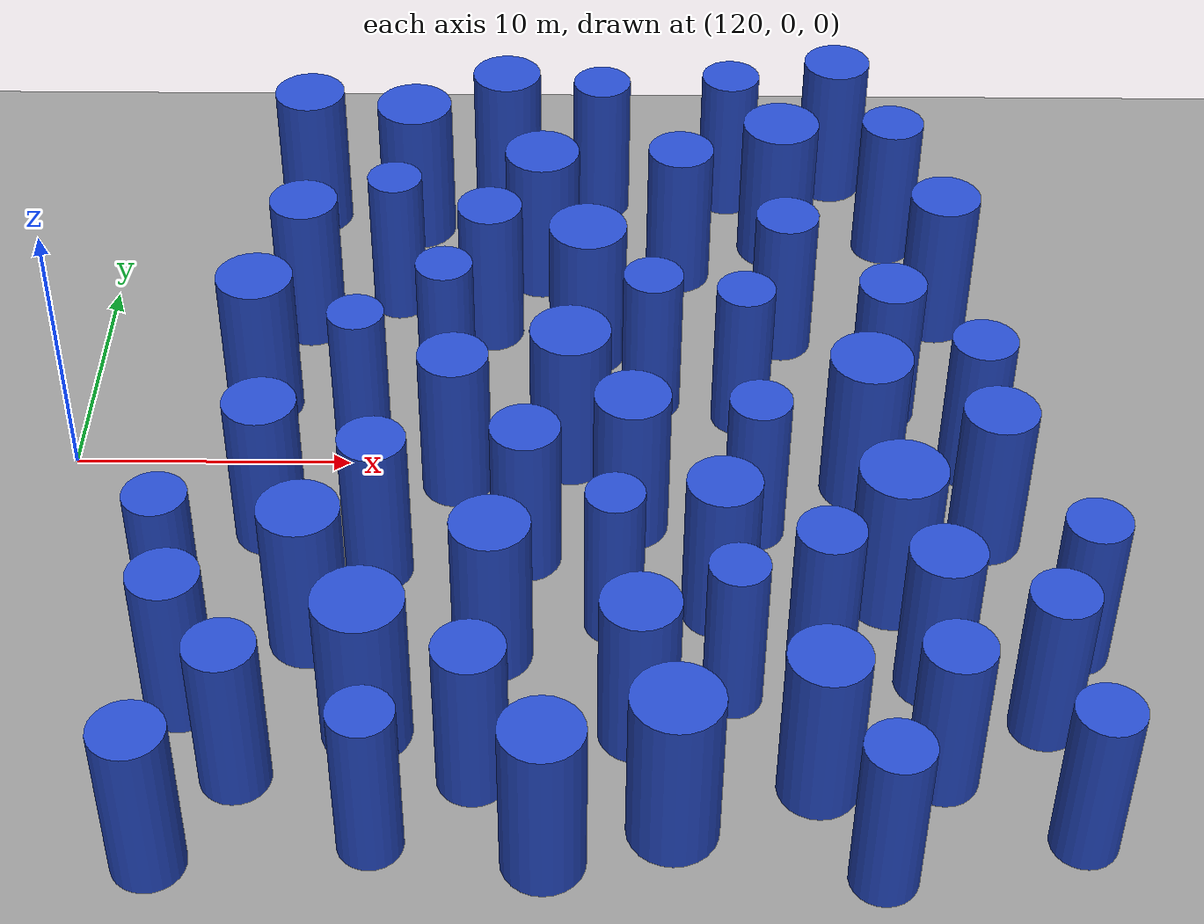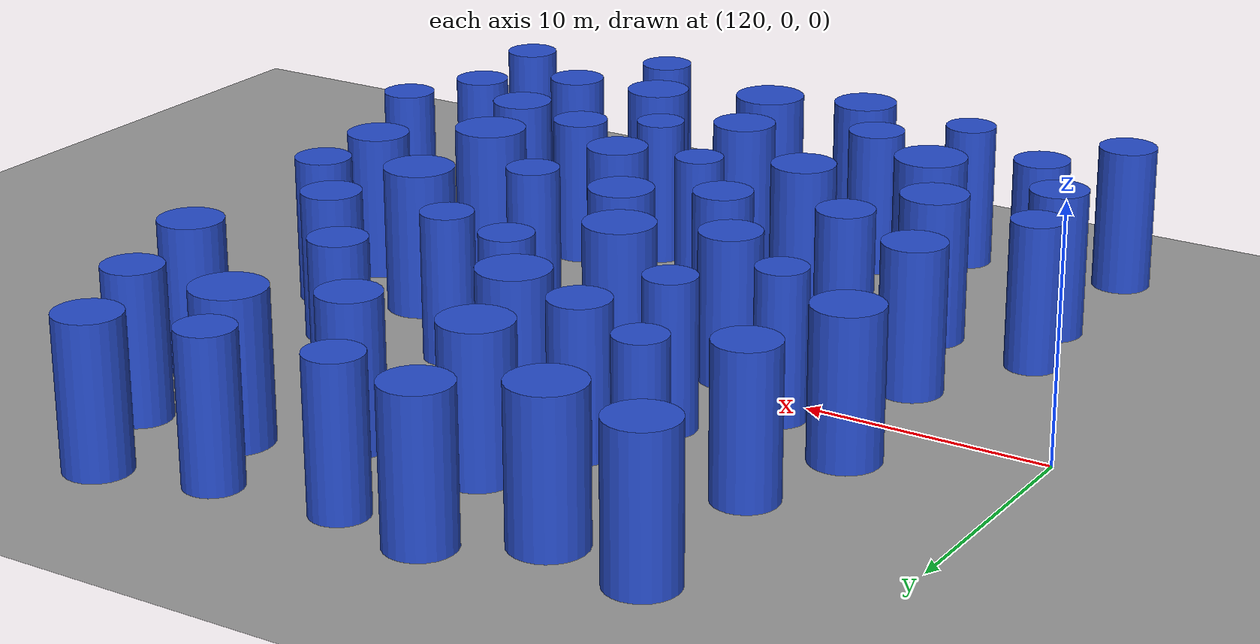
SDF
<sdf version="1.7">
 <world name="default">
  <model name="ground_plane_map">
   <static>1</static>
   <link name="link">
    <collision name="collision">
     <geometry><plane><normal>0 0 1</normal><size>310 50</size></plane></geometry>
     <surface>
      <contact>
       <collide_without_contact>0</collide_without_contact>
       <ode><kp>1000000.0</kp><kd>100.0</kd><max_vel>1.0</max_vel><min_depth>0.001</min_depth></ode>
      </contact>
      <friction><ode><mu>100</mu><mu2>50</mu2></ode></friction>
     </surface>
    </collision>
    <visual name="visual">
     <cast_shadows>0</cast_shadows>
     <geometry><plane><normal>0 0 1</normal><size>310 50</size></plane></geometry>
     <material>
      <script><uri>file://media/materials/scripts/gazebo.material</uri><name>Gazebo/Grey</name></script>
     </material>
    </visual>
   </link>
   <pose>153 0 0 0 -0 0</pose>
  </model>
  <model name="0">
   <static>1</static>
   <link name="link">
    <inertial>
     <mass>2</mass>
     <inertia><ixx>6.95079</ixx><ixy>0</ixy><ixz>0</ixz><iyy>6.95079</iyy><iyz>0</iyz><izz>1.90158</izz></inertia>
    </inertial>
    <collision name="collision">
     <geometry><cylinder><length>6</length><radius>1.37898</radius></cylinder></geometry>
     <surface><contact><collide_without_contact>1</collide_without_contact></contact></surface>
    </collision>
    <visual name="visual">
     <geometry><cylinder><length>6</length><radius>1.37898</radius></cylinder></geometry>
     <material>
      <script><uri>file://media/materials/scripts/gazebo.material</uri><name>Gazebo/Blue</name></script>
     </material>
    </visual>
    <gravity>0</gravity>
   </link>
   <pose>129.391 -8.97843 3 0 -0 0</pose>
  </model>
  <model name="6">
   <static>1</static>
   <link name="link">
    <inertial>
     <mass>2</mass>
     <inertia><ixx>6.55162</ixx><ixy>0</ixy><ixz>0</ixz><iyy>6.55162</iyy><iyz>0</iyz><izz>1.10324</izz></inertia>
    </inertial>
    <collision name="collision">
     <geometry><cylinder><length>6</length><radius>1.05035</radius></cylinder></geometry>
     <surface><contact><collide_without_contact>1</collide_without_contact></contact></surface>
    </collision>
    <visual name="visual">
     <geometry><cylinder><length>6</length><radius>1.05035</radius></cylinder></geometry>
     <material>
      <script><uri>file://media/materials/scripts/gazebo.material</uri><name>Gazebo/Blue</name></script>
     </material>
    </visual>
    <gravity>0</gravity>
   </link>
   <pose>133.39 4.20254 3 0 -0 0</pose>
  </model>
  <model name="7">
   <static>1</static>
   <link name="link">
    <inertial>
     <mass>2</mass>
     <inertia><ixx>7.10009</ixx><ixy>0</ixy><ixz>0</ixz><iyy>7.10009</iyy><iyz>0</iyz><izz>2.20019</izz></inertia>
    </inertial>
    <collision name="collision">
     <geometry><cylinder><length>6</length><radius>1.4833</radius></cylinder></geometry>
     <surface><contact><collide_without_contact>1</collide_without_contact></contact></surface>
    </collision>
    <visual name="visual">
     <geometry><cylinder><length>6</length><radius>1.4833</radius></cylinder></geometry>
     <material>
      <script><uri>file://media/materials/scripts/gazebo.material</uri><name>Gazebo/Blue</name></script>
     </material>
    </visual>
    <gravity>0</gravity>
   </link>
   <pose>146.171 13.5287 3 0 -0 0</pose>
  </model>
  <model name="18">
   <static>1</static>
   <link name="link">
    <inertial>
     <mass>2</mass>
     <inertia><ixx>6.88223</ixx><ixy>0</ixy><ixz>0</ixz><iyy>6.88223</iyy><iyz>0</iyz><izz>1.76446</izz></inertia>
    </inertial>
    <collision name="collision">
     <geometry><cylinder><length>6</length><radius>1.32833</radius></cylinder></geometry>
     <surface><contact><collide_without_contact>1</collide_without_contact></contact></surface>
    </collision>
    <visual name="visual">
     <geometry><cylinder><length>6</length><radius>1.32833</radius></cylinder></geometry>
     <material>
      <script><uri>file://media/materials/scripts/gazebo.material</uri><name>Gazebo/Blue</name></script>
     </material>
    </visual>
    <gravity>0</gravity>
   </link>
   <pose>146.022 -15.3173 3 0 -0 0</pose>
  </model>
  <model name="33">
   <static>1</static>
   <link name="link">
    <inertial>
     <mass>2</mass>
     <inertia><ixx>6.59422</ixx><ixy>0</ixy><ixz>0</ixz><iyy>6.59422</iyy><iyz>0</iyz><izz>1.18845</izz></inertia>
    </inertial>
    <collision name="collision">
     <geometry><cylinder><length>6</length><radius>1.09016</radius></cylinder></geometry>
     <surface><contact><collide_without_contact>1</collide_without_contact></contact></surface>
    </collision>
    <visual name="visual">
     <geometry><cylinder><length>6</length><radius>1.09016</radius></cylinder></geometry>
     <material>
      <script><uri>file://media/materials/scripts/gazebo.material</uri><name>Gazebo/Blue</name></script>
     </material>
    </visual>
    <gravity>0</gravity>
   </link>
   <pose>154.083 -17.4206 3 0 -0 0</pose>
  </model>
  <model name="38">
   <static>1</static>
   <link name="link">
    <inertial>
     <mass>2</mass>
     <inertia><ixx>6.59123</ixx><ixy>0</ixy><ixz>0</ixz><iyy>6.59123</iyy><iyz>0</iyz><izz>1.18246</izz></inertia>
    </inertial>
    <collision name="collision">
     <geometry><cylinder><length>6</length><radius>1.08741</radius></cylinder></geometry>
     <surface><contact><collide_without_contact>1</collide_without_contact></contact></surface>
    </collision>
    <visual name="visual">
     <geometry><cylinder><length>6</length><radius>1.08741</radius></cylinder></geometry>
     <material>
      <script><uri>file://media/materials/scripts/gazebo.material</uri><name>Gazebo/Blue</name></script>
     </material>
    </visual>
    <gravity>0</gravity>
   </link>
   <pose>144.549 -3.40785 3 0 -0 0</pose>
  </model>
  <model name="46">
   <static>1</static>
   <link name="link">
    <inertial>
     <mass>2</mass>
     <inertia><ixx>6.82443</ixx><ixy>0</ixy><ixz>0</ixz><iyy>6.82443</iyy><iyz>0</iyz><izz>1.64885</izz></inertia>
    </inertial>
    <collision name="collision">
     <geometry><cylinder><length>6</length><radius>1.28408</radius></cylinder></geometry>
     <surface><contact><collide_without_contact>1</collide_without_contact></contact></surface>
    </collision>
    <visual name="visual">
     <geometry><cylinder><length>6</length><radius>1.28408</radius></cylinder></geometry>
     <material>
      <script><uri>file://media/materials/scripts/gazebo.material</uri><name>Gazebo/Blue</name></script>
     </material>
    </visual>
    <gravity>0</gravity>
   </link>
   <pose>127.542 -3.65832 3 0 -0 0</pose>
  </model>
  <model name="66">
   <static>1</static>
   <link name="link">
    <inertial>
     <mass>2</mass>
     <inertia><ixx>6.65746</ixx><ixy>0</ixy><ixz>0</ixz><iyy>6.65746</iyy><iyz>0</iyz><izz>1.31493</izz></inertia>
    </inertial>
    <collision name="collision">
     <geometry><cylinder><length>6</length><radius>1.1467</radius></cylinder></geometry>
     <surface><contact><collide_without_contact>1</collide_without_contact></contact></surface>
    </collision>
    <visual name="visual">
     <geometry><cylinder><length>6</length><radius>1.1467</radius></cylinder></geometry>
     <material>
      <script><uri>file://media/materials/scripts/gazebo.material</uri><name>Gazebo/Blue</name></script>
     </material>
    </visual>
    <gravity>0</gravity>
   </link>
   <pose>146.47 -9.8148 3 0 -0 0</pose>
  </model>
  <model name="68">
   <static>1</static>
   <link name="link">
    <inertial>
     <mass>2</mass>
     <inertia><ixx>6.67775</ixx><ixy>0</ixy><ixz>0</ixz><iyy>6.67775</iyy><iyz>0</iyz><izz>1.3555</izz></inertia>
    </inertial>
    <collision name="collision">
     <geometry><cylinder><length>6</length><radius>1.16426</radius></cylinder></geometry>
     <surface><contact><collide_without_contact>1</collide_without_contact></contact></surface>
    </collision>
    <visual name="visual">
     <geometry><cylinder><length>6</length><radius>1.16426</radius></cylinder></geometry>
     <material>
      <script><uri>file://media/materials/scripts/gazebo.material</uri><name>Gazebo/Blue</name></script>
     </material>
    </visual>
    <gravity>0</gravity>
   </link>
   <pose>127.615 -15.0912 3 0 -0 0</pose>
  </model>
  <model name="74">
   <static>1</static>
   <link name="link">
    <inertial>
     <mass>2</mass>
     <inertia><ixx>6.74942</ixx><ixy>0</ixy><ixz>0</ixz><iyy>6.74942</iyy><iyz>0</iyz><izz>1.49884</izz></inertia>
    </inertial>
    <collision name="collision">
     <geometry><cylinder><length>6</length><radius>1.22427</radius></cylinder></geometry>
     <surface><contact><collide_without_contact>1</collide_without_contact></contact></surface>
    </collision>
    <visual name="visual">
     <geometry><cylinder><length>6</length><radius>1.22427</radius></cylinder></geometry>
     <material>
      <script><uri>file://media/materials/scripts/gazebo.material</uri><name>Gazebo/Blue</name></script>
     </material>
    </visual>
    <gravity>0</gravity>
   </link>
   <pose>149.614 3.18769 3 0 -0 0</pose>
  </model>
  <model name="77">
   <static>1</static>
   <link name="link">
    <inertial>
     <mass>2</mass>
     <inertia><ixx>7.05343</ixx><ixy>0</ixy><ixz>0</ixz><iyy>7.05343</iyy><iyz>0</iyz><izz>2.10687</izz></inertia>
    </inertial>
    <collision name="collision">
     <geometry><cylinder><length>6</length><radius>1.45151</radius></cylinder></geometry>
     <surface><contact><collide_without_contact>1</collide_without_contact></contact></surface>
    </collision>
    <visual name="visual">
     <geometry><cylinder><length>6</length><radius>1.45151</radius></cylinder></geometry>
     <material>
      <script><uri>file://media/materials/scripts/gazebo.material</uri><name>Gazebo/Blue</name></script>
     </material>
    </visual>
    <gravity>0</gravity>
   </link>
   <pose>138.624 6.56323 3 0 -0 0</pose>
  </model>
  <model name="82">
   <static>1</static>
   <link name="link">
    <inertial>
     <mass>2</mass>
     <inertia><ixx>6.67423</ixx><ixy>0</ixy><ixz>0</ixz><iyy>6.67423</iyy><iyz>0</iyz><izz>1.34846</izz></inertia>
    </inertial>
    <collision name="collision">
     <geometry><cylinder><length>6</length><radius>1.16123</radius></cylinder></geometry>
     <surface><contact><collide_without_contact>1</collide_without_contact></contact></surface>
    </collision>
    <visual name="visual">
     <geometry><cylinder><length>6</length><radius>1.16123</radius></cylinder></geometry>
     <material>
      <script><uri>file://media/materials/scripts/gazebo.material</uri><name>Gazebo/Blue</name></script>
     </material>
    </visual>
    <gravity>0</gravity>
   </link>
   <pose>152.536 -0.050993 3 0 -0 0</pose>
  </model>
  <model name="94">
   <static>1</static>
   <link name="link">
    <inertial>
     <mass>2</mass>
     <inertia><ixx>6.59512</ixx><ixy>0</ixy><ixz>0</ixz><iyy>6.59512</iyy><iyz>0</iyz><izz>1.19025</izz></inertia>
    </inertial>
    <collision name="collision">
     <geometry><cylinder><length>6</length><radius>1.09098</radius></cylinder></geometry>
     <surface><contact><collide_without_contact>1</collide_without_contact></contact></surface>
    </collision>
    <visual name="visual">
     <geometry><cylinder><length>6</length><radius>1.09098</radius></cylinder></geometry>
     <material>
      <script><uri>file://media/materials/scripts/gazebo.material</uri><name>Gazebo/Blue</name></script>
     </material>
    </visual>
    <gravity>0</gravity>
   </link>
   <pose>155.042 -9.28586 3 0 -0 0</pose>
  </model>
  <model name="97">
   <static>1</static>
   <link name="link">
    <inertial>
     <mass>2</mass>
     <inertia><ixx>6.73076</ixx><ixy>0</ixy><ixz>0</ixz><iyy>6.73076</iyy><iyz>0</iyz><izz>1.46152</izz></inertia>
    </inertial>
    <collision name="collision">
     <geometry><cylinder><length>6</length><radius>1.20893</radius></cylinder></geometry>
     <surface><contact><collide_without_contact>1</collide_without_contact></contact></surface>
    </collision>
    <visual name="visual">
     <geometry><cylinder><length>6</length><radius>1.20893</radius></cylinder></geometry>
     <material>
      <script><uri>file://media/materials/scripts/gazebo.material</uri><name>Gazebo/Blue</name></script>
     </material>
    </visual>
    <gravity>0</gravity>
   </link>
   <pose>150.569 13.6545 3 0 -0 0</pose>
  </model>
  <model name="120">
   <static>1</static>
   <link name="link">
    <inertial>
     <mass>2</mass>
     <inertia><ixx>6.73337</ixx><ixy>0</ixy><ixz>0</ixz><iyy>6.73337</iyy><iyz>0</iyz><izz>1.46675</izz></inertia>
    </inertial>
    <collision name="collision">
     <geometry><cylinder><length>6</length><radius>1.21109</radius></cylinder></geometry>
     <surface><contact><collide_without_contact>1</collide_without_contact></contact></surface>
    </collision>
    <visual name="visual">
     <geometry><cylinder><length>6</length><radius>1.21109</radius></cylinder></geometry>
     <material>
      <script><uri>file://media/materials/scripts/gazebo.material</uri><name>Gazebo/Blue</name></script>
     </material>
    </visual>
    <gravity>0</gravity>
   </link>
   <pose>136.577 -4.91307 3 0 -0 0</pose>
  </model>
  <model name="122">
   <static>1</static>
   <link name="link">
    <inertial>
     <mass>2</mass>
     <inertia><ixx>6.65741</ixx><ixy>0</ixy><ixz>0</ixz><iyy>6.65741</iyy><iyz>0</iyz><izz>1.31482</izz></inertia>
    </inertial>
    <collision name="collision">
     <geometry><cylinder><length>6</length><radius>1.14666</radius></cylinder></geometry>
     <surface><contact><collide_without_contact>1</collide_without_contact></contact></surface>
    </collision>
    <visual name="visual">
     <geometry><cylinder><length>6</length><radius>1.14666</radius></cylinder></geometry>
     <material>
      <script><uri>file://media/materials/scripts/gazebo.material</uri><name>Gazebo/Blue</name></script>
     </material>
    </visual>
    <gravity>0</gravity>
   </link>
   <pose>144.333 16.9781 3 0 -0 0</pose>
  </model>
  <model name="123">
   <static>1</static>
   <link name="link">
    <inertial>
     <mass>2</mass>
     <inertia><ixx>6.64807</ixx><ixy>0</ixy><ixz>0</ixz><iyy>6.64807</iyy><iyz>0</iyz><izz>1.29615</izz></inertia>
    </inertial>
    <collision name="collision">
     <geometry><cylinder><length>6</length><radius>1.13849</radius></cylinder></geometry>
     <surface><contact><collide_without_contact>1</collide_without_contact></contact></surface>
    </collision>
    <visual name="visual">
     <geometry><cylinder><length>6</length><radius>1.13849</radius></cylinder></geometry>
     <material>
      <script><uri>file://media/materials/scripts/gazebo.material</uri><name>Gazebo/Blue</name></script>
     </material>
    </visual>
    <gravity>0</gravity>
   </link>
   <pose>139.14 16.4889 3 0 -0 0</pose>
  </model>
  <model name="134">
   <static>1</static>
   <link name="link">
    <inertial>
     <mass>2</mass>
     <inertia><ixx>6.6927</ixx><ixy>0</ixy><ixz>0</ixz><iyy>6.6927</iyy><iyz>0</iyz><izz>1.3854</izz></inertia>
    </inertial>
    <collision name="collision">
     <geometry><cylinder><length>6</length><radius>1.17703</radius></cylinder></geometry>
     <surface><contact><collide_without_contact>1</collide_without_contact></contact></surface>
    </collision>
    <visual name="visual">
     <geometry><cylinder><length>6</length><radius>1.17703</radius></cylinder></geometry>
     <material>
      <script><uri>file://media/materials/scripts/gazebo.material</uri><name>Gazebo/Blue</name></script>
     </material>
    </visual>
    <gravity>0</gravity>
   </link>
   <pose>146.069 7.3295 3 0 -0 0</pose>
  </model>
  <model name="154">
   <static>1</static>
   <link name="link">
    <inertial>
     <mass>2</mass>
     <inertia><ixx>6.95596</ixx><ixy>0</ixy><ixz>0</ixz><iyy>6.95596</iyy><iyz>0</iyz><izz>1.91192</izz></inertia>
    </inertial>
    <collision name="collision">
     <geometry><cylinder><length>6</length><radius>1.38272</radius></cylinder></geometry>
     <surface><contact><collide_without_contact>1</collide_without_contact></contact></surface>
    </collision>
    <visual name="visual">
     <geometry><cylinder><length>6</length><radius>1.38272</radius></cylinder></geometry>
     <material>
      <script><uri>file://media/materials/scripts/gazebo.material</uri><name>Gazebo/Blue</name></script>
     </material>
    </visual>
    <gravity>0</gravity>
   </link>
   <pose>127.442 15.61 3 0 -0 0</pose>
  </model>
  <model name="155">
   <static>1</static>
   <link name="link">
    <inertial>
     <mass>2</mass>
     <inertia><ixx>6.53932</ixx><ixy>0</ixy><ixz>0</ixz><iyy>6.53932</iyy><iyz>0</iyz><izz>1.07863</izz></inertia>
    </inertial>
    <collision name="collision">
     <geometry><cylinder><length>6</length><radius>1.03857</radius></cylinder></geometry>
     <surface><contact><collide_without_contact>1</collide_without_contact></contact></surface>
    </collision>
    <visual name="visual">
     <geometry><cylinder><length>6</length><radius>1.03857</radius></cylinder></geometry>
     <material>
      <script><uri>file://media/materials/scripts/gazebo.material</uri><name>Gazebo/Blue</name></script>
     </material>
    </visual>
    <gravity>0</gravity>
   </link>
   <pose>131.232 9.6638 3 0 -0 0</pose>
  </model>
  <model name="181">
   <static>1</static>
   <link name="link">
    <inertial>
     <mass>2</mass>
     <inertia><ixx>6.85838</ixx><ixy>0</ixy><ixz>0</ixz><iyy>6.85838</iyy><iyz>0</iyz><izz>1.71677</izz></inertia>
    </inertial>
    <collision name="collision">
     <geometry><cylinder><length>6</length><radius>1.31026</radius></cylinder></geometry>
     <surface><contact><collide_without_contact>1</collide_without_contact></contact></surface>
    </collision>
    <visual name="visual">
     <geometry><cylinder><length>6</length><radius>1.31026</radius></cylinder></geometry>
     <material>
      <script><uri>file://media/materials/scripts/gazebo.material</uri><name>Gazebo/Blue</name></script>
     </material>
    </visual>
    <gravity>0</gravity>
   </link>
   <pose>140.365 -13.0802 3 0 -0 0</pose>
  </model>
  <model name="201">
   <static>1</static>
   <link name="link">
    <inertial>
     <mass>2</mass>
     <inertia><ixx>6.86318</ixx><ixy>0</ixy><ixz>0</ixz><iyy>6.86318</iyy><iyz>0</iyz><izz>1.72635</izz></inertia>
    </inertial>
    <collision name="collision">
     <geometry><cylinder><length>6</length><radius>1.31391</radius></cylinder></geometry>
     <surface><contact><collide_without_contact>1</collide_without_contact></contact></surface>
    </collision>
    <visual name="visual">
     <geometry><cylinder><length>6</length><radius>1.31391</radius></cylinder></geometry>
     <material>
      <script><uri>file://media/materials/scripts/gazebo.material</uri><name>Gazebo/Blue</name></script>
     </material>
    </visual>
    <gravity>0</gravity>
   </link>
   <pose>152.105 8.62996 3 0 -0 0</pose>
  </model>
  <model name="202">
   <static>1</static>
   <link name="link">
    <inertial>
     <mass>2</mass>
     <inertia><ixx>7.04528</ixx><ixy>0</ixy><ixz>0</ixz><iyy>7.04528</iyy><iyz>0</iyz><izz>2.09056</izz></inertia>
    </inertial>
    <collision name="collision">
     <geometry><cylinder><length>6</length><radius>1.44588</radius></cylinder></geometry>
     <surface><contact><collide_without_contact>1</collide_without_contact></contact></surface>
    </collision>
    <visual name="visual">
     <geometry><cylinder><length>6</length><radius>1.44588</radius></cylinder></geometry>
     <material>
      <script><uri>file://media/materials/scripts/gazebo.material</uri><name>Gazebo/Blue</name></script>
     </material>
    </visual>
    <gravity>0</gravity>
   </link>
   <pose>138.042 0.330227 3 0 -0 0</pose>
  </model>
  <model name="214">
   <static>1</static>
   <link name="link">
    <inertial>
     <mass>2</mass>
     <inertia><ixx>6.68643</ixx><ixy>0</ixy><ixz>0</ixz><iyy>6.68643</iyy><iyz>0</iyz><izz>1.37286</izz></inertia>
    </inertial>
    <collision name="collision">
     <geometry><cylinder><length>6</length><radius>1.17169</radius></cylinder></geometry>
     <surface><contact><collide_without_contact>1</collide_without_contact></contact></surface>
    </collision>
    <visual name="visual">
     <geometry><cylinder><length>6</length><radius>1.17169</radius></cylinder></geometry>
     <material>
      <script><uri>file://media/materials/scripts/gazebo.material</uri><name>Gazebo/Blue</name></script>
     </material>
    </visual>
    <gravity>0</gravity>
   </link>
   <pose>131.489 -5.56112 3 0 -0 0</pose>
  </model>
  <model name="227">
   <static>1</static>
   <link name="link">
    <inertial>
     <mass>2</mass>
     <inertia><ixx>6.78767</ixx><ixy>0</ixy><ixz>0</ixz><iyy>6.78767</iyy><iyz>0</iyz><izz>1.57534</izz></inertia>
    </inertial>
    <collision name="collision">
     <geometry><cylinder><length>6</length><radius>1.25513</radius></cylinder></geometry>
     <surface><contact><collide_without_contact>1</collide_without_contact></contact></surface>
    </collision>
    <visual name="visual">
     <geometry><cylinder><length>6</length><radius>1.25513</radius></cylinder></geometry>
     <material>
      <script><uri>file://media/materials/scripts/gazebo.material</uri><name>Gazebo/Blue</name></script>
     </material>
    </visual>
    <gravity>0</gravity>
   </link>
   <pose>133.971 -1.08218 3 0 -0 0</pose>
  </model>
  <model name="230">
   <static>1</static>
   <link name="link">
    <inertial>
     <mass>2</mass>
     <inertia><ixx>6.97865</ixx><ixy>0</ixy><ixz>0</ixz><iyy>6.97865</iyy><iyz>0</iyz><izz>1.9573</izz></inertia>
    </inertial>
    <collision name="collision">
     <geometry><cylinder><length>6</length><radius>1.39904</radius></cylinder></geometry>
     <surface><contact><collide_without_contact>1</collide_without_contact></contact></surface>
    </collision>
    <visual name="visual">
     <geometry><cylinder><length>6</length><radius>1.39904</radius></cylinder></geometry>
     <material>
      <script><uri>file://media/materials/scripts/gazebo.material</uri><name>Gazebo/Blue</name></script>
     </material>
    </visual>
    <gravity>0</gravity>
   </link>
   <pose>126.578 3.3558 3 0 -0 0</pose>
  </model>
  <model name="254">
   <static>1</static>
   <link name="link">
    <inertial>
     <mass>2</mass>
     <inertia><ixx>7.10754</ixx><ixy>0</ixy><ixz>0</ixz><iyy>7.10754</iyy><iyz>0</iyz><izz>2.21509</izz></inertia>
    </inertial>
    <collision name="collision">
     <geometry><cylinder><length>6</length><radius>1.48832</radius></cylinder></geometry>
     <surface><contact><collide_without_contact>1</collide_without_contact></contact></surface>
    </collision>
    <visual name="visual">
     <geometry><cylinder><length>6</length><radius>1.48832</radius></cylinder></geometry>
     <material>
      <script><uri>file://media/materials/scripts/gazebo.material</uri><name>Gazebo/Blue</name></script>
     </material>
    </visual>
    <gravity>0</gravity>
   </link>
   <pose>149.043 -6.86695 3 0 -0 0</pose>
  </model>
  <model name="262">
   <static>1</static>
   <link name="link">
    <inertial>
     <mass>2</mass>
     <inertia><ixx>6.89322</ixx><ixy>0</ixy><ixz>0</ixz><iyy>6.89322</iyy><iyz>0</iyz><izz>1.78645</izz></inertia>
    </inertial>
    <collision name="collision">
     <geometry><cylinder><length>6</length><radius>1.33658</radius></cylinder></geometry>
     <surface><contact><collide_without_contact>1</collide_without_contact></contact></surface>
    </collision>
    <visual name="visual">
     <geometry><cylinder><length>6</length><radius>1.33658</radius></cylinder></geometry>
     <material>
      <script><uri>file://media/materials/scripts/gazebo.material</uri><name>Gazebo/Blue</name></script>
     </material>
    </visual>
    <gravity>0</gravity>
   </link>
   <pose>135.571 -9.59417 3 0 -0 0</pose>
  </model>
  <model name="271">
   <static>1</static>
   <link name="link">
    <inertial>
     <mass>2</mass>
     <inertia><ixx>6.56122</ixx><ixy>0</ixy><ixz>0</ixz><iyy>6.56122</iyy><iyz>0</iyz><izz>1.12244</izz></inertia>
    </inertial>
    <collision name="collision">
     <geometry><cylinder><length>6</length><radius>1.05945</radius></cylinder></geometry>
     <surface><contact><collide_without_contact>1</collide_without_contact></contact></surface>
    </collision>
    <visual name="visual">
     <geometry><cylinder><length>6</length><radius>1.05945</radius></cylinder></geometry>
     <material>
      <script><uri>file://media/materials/scripts/gazebo.material</uri><name>Gazebo/Blue</name></script>
     </material>
    </visual>
    <gravity>0</gravity>
   </link>
   <pose>132.08 -17.7363 3 0 -0 0</pose>
  </model>
  <model name="337">
   <static>1</static>
   <link name="link">
    <inertial>
     <mass>2</mass>
     <inertia><ixx>7.05362</ixx><ixy>0</ixy><ixz>0</ixz><iyy>7.05362</iyy><iyz>0</iyz><izz>2.10725</izz></inertia>
    </inertial>
    <collision name="collision">
     <geometry><cylinder><length>6</length><radius>1.45164</radius></cylinder></geometry>
     <surface><contact><collide_without_contact>1</collide_without_contact></contact></surface>
    </collision>
    <visual name="visual">
     <geometry><cylinder><length>6</length><radius>1.45164</radius></cylinder></geometry>
     <material>
      <script><uri>file://media/materials/scripts/gazebo.material</uri><name>Gazebo/Blue</name></script>
     </material>
    </visual>
    <gravity>0</gravity>
   </link>
   <pose>148.483 -1.08206 3 0 -0 0</pose>
  </model>
  <model name="344">
   <static>1</static>
   <link name="link">
    <inertial>
     <mass>2</mass>
     <inertia><ixx>6.58526</ixx><ixy>0</ixy><ixz>0</ixz><iyy>6.58526</iyy><iyz>0</iyz><izz>1.17052</izz></inertia>
    </inertial>
    <collision name="collision">
     <geometry><cylinder><length>6</length><radius>1.0819</radius></cylinder></geometry>
     <surface><contact><collide_without_contact>1</collide_without_contact></contact></surface>
    </collision>
    <visual name="visual">
     <geometry><cylinder><length>6</length><radius>1.0819</radius></cylinder></geometry>
     <material>
      <script><uri>file://media/materials/scripts/gazebo.material</uri><name>Gazebo/Blue</name></script>
     </material>
    </visual>
    <gravity>0</gravity>
   </link>
   <pose>124.69 -8.36405 3 0 -0 0</pose>
  </model>
  <model name="347">
   <static>1</static>
   <link name="link">
    <inertial>
     <mass>2</mass>
     <inertia><ixx>6.92083</ixx><ixy>0</ixy><ixz>0</ixz><iyy>6.92083</iyy><iyz>0</iyz><izz>1.84165</izz></inertia>
    </inertial>
    <collision name="collision">
     <geometry><cylinder><length>6</length><radius>1.35708</radius></cylinder></geometry>
     <surface><contact><collide_without_contact>1</collide_without_contact></contact></surface>
    </collision>
    <visual name="visual">
     <geometry><cylinder><length>6</length><radius>1.35708</radius></cylinder></geometry>
     <material>
      <script><uri>file://media/materials/scripts/gazebo.material</uri><name>Gazebo/Blue</name></script>
     </material>
    </visual>
    <gravity>0</gravity>
   </link>
   <pose>135.286 17.0741 3 0 -0 0</pose>
  </model>
  <model name="353">
   <static>1</static>
   <link name="link">
    <inertial>
     <mass>2</mass>
     <inertia><ixx>6.56643</ixx><ixy>0</ixy><ixz>0</ixz><iyy>6.56643</iyy><iyz>0</iyz><izz>1.13286</izz></inertia>
    </inertial>
    <collision name="collision">
     <geometry><cylinder><length>6</length><radius>1.06436</radius></cylinder></geometry>
     <surface><contact><collide_without_contact>1</collide_without_contact></contact></surface>
    </collision>
    <visual name="visual">
     <geometry><cylinder><length>6</length><radius>1.06436</radius></cylinder></geometry>
     <material>
      <script><uri>file://media/materials/scripts/gazebo.material</uri><name>Gazebo/Blue</name></script>
     </material>
    </visual>
    <gravity>0</gravity>
   </link>
   <pose>144.323 2.78995 3 0 -0 0</pose>
  </model>
  <model name="358">
   <static>1</static>
   <link name="link">
    <inertial>
     <mass>2</mass>
     <inertia><ixx>6.68981</ixx><ixy>0</ixy><ixz>0</ixz><iyy>6.68981</iyy><iyz>0</iyz><izz>1.37962</izz></inertia>
    </inertial>
    <collision name="collision">
     <geometry><cylinder><length>6</length><radius>1.17457</radius></cylinder></geometry>
     <surface><contact><collide_without_contact>1</collide_without_contact></contact></surface>
    </collision>
    <visual name="visual">
     <geometry><cylinder><length>6</length><radius>1.17457</radius></cylinder></geometry>
     <material>
      <script><uri>file://media/materials/scripts/gazebo.material</uri><name>Gazebo/Blue</name></script>
     </material>
    </visual>
    <gravity>0</gravity>
   </link>
   <pose>135.133 -15.078 3 0 -0 0</pose>
  </model>
  <model name="362">
   <static>1</static>
   <link name="link">
    <inertial>
     <mass>2</mass>
     <inertia><ixx>6.80278</ixx><ixy>0</ixy><ixz>0</ixz><iyy>6.80278</iyy><iyz>0</iyz><izz>1.60556</izz></inertia>
    </inertial>
    <collision name="collision">
     <geometry><cylinder><length>6</length><radius>1.26711</radius></cylinder></geometry>
     <surface><contact><collide_without_contact>1</collide_without_contact></contact></surface>
    </collision>
    <visual name="visual">
     <geometry><cylinder><length>6</length><radius>1.26711</radius></cylinder></geometry>
     <material>
      <script><uri>file://media/materials/scripts/gazebo.material</uri><name>Gazebo/Blue</name></script>
     </material>
    </visual>
    <gravity>0</gravity>
   </link>
   <pose>143.162 -7.539 3 0 -0 0</pose>
  </model>
  <model name="376">
   <static>1</static>
   <link name="link">
    <inertial>
     <mass>2</mass>
     <inertia><ixx>6.73938</ixx><ixy>0</ixy><ixz>0</ixz><iyy>6.73938</iyy><iyz>0</iyz><izz>1.47876</izz></inertia>
    </inertial>
    <collision name="collision">
     <geometry><cylinder><length>6</length><radius>1.21604</radius></cylinder></geometry>
     <surface><contact><collide_without_contact>1</collide_without_contact></contact></surface>
    </collision>
    <visual name="visual">
     <geometry><cylinder><length>6</length><radius>1.21604</radius></cylinder></geometry>
     <material>
      <script><uri>file://media/materials/scripts/gazebo.material</uri><name>Gazebo/Blue</name></script>
     </material>
    </visual>
    <gravity>0</gravity>
   </link>
   <pose>134.923 7.84434 3 0 -0 0</pose>
  </model>
  <model name="388">
   <static>1</static>
   <link name="link">
    <inertial>
     <mass>2</mass>
     <inertia><ixx>6.59674</ixx><ixy>0</ixy><ixz>0</ixz><iyy>6.59674</iyy><iyz>0</iyz><izz>1.19347</izz></inertia>
    </inertial>
    <collision name="collision">
     <geometry><cylinder><length>6</length><radius>1.09246</radius></cylinder></geometry>
     <surface><contact><collide_without_contact>1</collide_without_contact></contact></surface>
    </collision>
    <visual name="visual">
     <geometry><cylinder><length>6</length><radius>1.09246</radius></cylinder></geometry>
     <material>
      <script><uri>file://media/materials/scripts/gazebo.material</uri><name>Gazebo/Blue</name></script>
     </material>
    </visual>
    <gravity>0</gravity>
   </link>
   <pose>141.008 3.57741 3 0 -0 0</pose>
  </model>
  <model name="389">
   <static>1</static>
   <link name="link">
    <inertial>
     <mass>2</mass>
     <inertia><ixx>6.83633</ixx><ixy>0</ixy><ixz>0</ixz><iyy>6.83633</iyy><iyz>0</iyz><izz>1.67265</izz></inertia>
    </inertial>
    <collision name="collision">
     <geometry><cylinder><length>6</length><radius>1.29331</radius></cylinder></geometry>
     <surface><contact><collide_without_contact>1</collide_without_contact></contact></surface>
    </collision>
    <visual name="visual">
     <geometry><cylinder><length>6</length><radius>1.29331</radius></cylinder></geometry>
     <material>
      <script><uri>file://media/materials/scripts/gazebo.material</uri><name>Gazebo/Blue</name></script>
     </material>
    </visual>
    <gravity>0</gravity>
   </link>
   <pose>152.623 -3.84682 3 0 -0 0</pose>
  </model>
  <model name="406">
   <static>1</static>
   <link name="link">
    <inertial>
     <mass>2</mass>
     <inertia><ixx>6.52735</ixx><ixy>0</ixy><ixz>0</ixz><iyy>6.52735</iyy><iyz>0</iyz><izz>1.0547</izz></inertia>
    </inertial>
    <collision name="collision">
     <geometry><cylinder><length>6</length><radius>1.02699</radius></cylinder></geometry>
     <surface><contact><collide_without_contact>1</collide_without_contact></contact></surface>
    </collision>
    <visual name="visual">
     <geometry><cylinder><length>6</length><radius>1.02699</radius></cylinder></geometry>
     <material>
      <script><uri>file://media/materials/scripts/gazebo.material</uri><name>Gazebo/Blue</name></script>
     </material>
    </visual>
    <gravity>0</gravity>
   </link>
   <pose>130.407 1.28659 3 0 -0 0</pose>
  </model>
  <model name="409">
   <static>1</static>
   <link name="link">
    <inertial>
     <mass>2</mass>
     <inertia><ixx>6.68712</ixx><ixy>0</ixy><ixz>0</ixz><iyy>6.68712</iyy><iyz>0</iyz><izz>1.37423</izz></inertia>
    </inertial>
    <collision name="collision">
     <geometry><cylinder><length>6</length><radius>1.17228</radius></cylinder></geometry>
     <surface><contact><collide_without_contact>1</collide_without_contact></contact></surface>
    </collision>
    <visual name="visual">
     <geometry><cylinder><length>6</length><radius>1.17228</radius></cylinder></geometry>
     <material>
      <script><uri>file://media/materials/scripts/gazebo.material</uri><name>Gazebo/Blue</name></script>
     </material>
    </visual>
    <gravity>0</gravity>
   </link>
   <pose>149.975 -14.8953 3 0 -0 0</pose>
  </model>
  <model name="415">
   <static>1</static>
   <link name="link">
    <inertial>
     <mass>2</mass>
     <inertia><ixx>6.86903</ixx><ixy>0</ixy><ixz>0</ixz><iyy>6.86903</iyy><iyz>0</iyz><izz>1.73805</izz></inertia>
    </inertial>
    <collision name="collision">
     <geometry><cylinder><length>6</length><radius>1.31835</radius></cylinder></geometry>
     <surface><contact><collide_without_contact>1</collide_without_contact></contact></surface>
    </collision>
    <visual name="visual">
     <geometry><cylinder><length>6</length><radius>1.31835</radius></cylinder></geometry>
     <material>
      <script><uri>file://media/materials/scripts/gazebo.material</uri><name>Gazebo/Blue</name></script>
     </material>
    </visual>
    <gravity>0</gravity>
   </link>
   <pose>148.696 18.0966 3 0 -0 0</pose>
  </model>
  <model name="418">
   <static>1</static>
   <link name="link">
    <inertial>
     <mass>2</mass>
     <inertia><ixx>6.90407</ixx><ixy>0</ixy><ixz>0</ixz><iyy>6.90407</iyy><iyz>0</iyz><izz>1.80815</izz></inertia>
    </inertial>
    <collision name="collision">
     <geometry><cylinder><length>6</length><radius>1.34467</radius></cylinder></geometry>
     <surface><contact><collide_without_contact>1</collide_without_contact></contact></surface>
    </collision>
    <visual name="visual">
     <geometry><cylinder><length>6</length><radius>1.34467</radius></cylinder></geometry>
     <material>
      <script><uri>file://media/materials/scripts/gazebo.material</uri><name>Gazebo/Blue</name></script>
     </material>
    </visual>
    <gravity>0</gravity>
   </link>
   <pose>137.416 -18.3764 3 0 -0 0</pose>
  </model>
  <model name="422">
   <static>1</static>
   <link name="link">
    <inertial>
     <mass>2</mass>
     <inertia><ixx>6.88749</ixx><ixy>0</ixy><ixz>0</ixz><iyy>6.88749</iyy><iyz>0</iyz><izz>1.77498</izz></inertia>
    </inertial>
    <collision name="collision">
     <geometry><cylinder><length>6</length><radius>1.33228</radius></cylinder></geometry>
     <surface><contact><collide_without_contact>1</collide_without_contact></contact></surface>
    </collision>
    <visual name="visual">
     <geometry><cylinder><length>6</length><radius>1.33228</radius></cylinder></geometry>
     <material>
      <script><uri>file://media/materials/scripts/gazebo.material</uri><name>Gazebo/Blue</name></script>
     </material>
    </visual>
    <gravity>0</gravity>
   </link>
   <pose>140.202 -3.18275 3 0 -0 0</pose>
  </model>
  <model name="440">
   <static>1</static>
   <link name="link">
    <inertial>
     <mass>2</mass>
     <inertia><ixx>6.64488</ixx><ixy>0</ixy><ixz>0</ixz><iyy>6.64488</iyy><iyz>0</iyz><izz>1.28977</izz></inertia>
    </inertial>
    <collision name="collision">
     <geometry><cylinder><length>6</length><radius>1.13568</radius></cylinder></geometry>
     <surface><contact><collide_without_contact>1</collide_without_contact></contact></surface>
    </collision>
    <visual name="visual">
     <geometry><cylinder><length>6</length><radius>1.13568</radius></cylinder></geometry>
     <material>
      <script><uri>file://media/materials/scripts/gazebo.material</uri><name>Gazebo/Blue</name></script>
     </material>
    </visual>
    <gravity>0</gravity>
   </link>
   <pose>153.483 -12.602 3 0 -0 0</pose>
  </model>
  <model name="442">
   <static>1</static>
   <link name="link">
    <inertial>
     <mass>2</mass>
     <inertia><ixx>6.79336</ixx><ixy>0</ixy><ixz>0</ixz><iyy>6.79336</iyy><iyz>0</iyz><izz>1.58672</izz></inertia>
    </inertial>
    <collision name="collision">
     <geometry><cylinder><length>6</length><radius>1.25965</radius></cylinder></geometry>
     <surface><contact><collide_without_contact>1</collide_without_contact></contact></surface>
    </collision>
    <visual name="visual">
     <geometry><cylinder><length>6</length><radius>1.25965</radius></cylinder></geometry>
     <material>
      <script><uri>file://media/materials/scripts/gazebo.material</uri><name>Gazebo/Blue</name></script>
     </material>
    </visual>
    <gravity>0</gravity>
   </link>
   <pose>142.201 11.6754 3 0 -0 0</pose>
  </model>
  <model name="455">
   <static>1</static>
   <link name="link">
    <inertial>
     <mass>2</mass>
     <inertia><ixx>6.82693</ixx><ixy>0</ixy><ixz>0</ixz><iyy>6.82693</iyy><iyz>0</iyz><izz>1.65385</izz></inertia>
    </inertial>
    <collision name="collision">
     <geometry><cylinder><length>6</length><radius>1.28602</radius></cylinder></geometry>
     <surface><contact><collide_without_contact>1</collide_without_contact></contact></surface>
    </collision>
    <visual name="visual">
     <geometry><cylinder><length>6</length><radius>1.28602</radius></cylinder></geometry>
     <material>
      <script><uri>file://media/materials/scripts/gazebo.material</uri><name>Gazebo/Blue</name></script>
     </material>
    </visual>
    <gravity>0</gravity>
   </link>
   <pose>127.9 8.14742 3 0 -0 0</pose>
  </model>
  <model name="466">
   <static>1</static>
   <link name="link">
    <inertial>
     <mass>2</mass>
     <inertia><ixx>7.08453</ixx><ixy>0</ixy><ixz>0</ixz><iyy>7.08453</iyy><iyz>0</iyz><izz>2.16905</izz></inertia>
    </inertial>
    <collision name="collision">
     <geometry><cylinder><length>6</length><radius>1.47277</radius></cylinder></geometry>
     <surface><contact><collide_without_contact>1</collide_without_contact></contact></surface>
    </collision>
    <visual name="visual">
     <geometry><cylinder><length>6</length><radius>1.47277</radius></cylinder></geometry>
     <material>
      <script><uri>file://media/materials/scripts/gazebo.material</uri><name>Gazebo/Blue</name></script>
     </material>
    </visual>
    <gravity>0</gravity>
   </link>
   <pose>141.408 -17.0855 3 0 -0 0</pose>
  </model>
  <model name="475">
   <static>1</static>
   <link name="link">
    <inertial>
     <mass>2</mass>
     <inertia><ixx>6.71917</ixx><ixy>0</ixy><ixz>0</ixz><iyy>6.71917</iyy><iyz>0</iyz><izz>1.43835</izz></inertia>
    </inertial>
    <collision name="collision">
     <geometry><cylinder><length>6</length><radius>1.19931</radius></cylinder></geometry>
     <surface><contact><collide_without_contact>1</collide_without_contact></contact></surface>
    </collision>
    <visual name="visual">
     <geometry><cylinder><length>6</length><radius>1.19931</radius></cylinder></geometry>
     <material>
      <script><uri>file://media/materials/scripts/gazebo.material</uri><name>Gazebo/Blue</name></script>
     </material>
    </visual>
    <gravity>0</gravity>
   </link>
   <pose>125.35 -18.5488 3 0 -0 0</pose>
  </model>
  <model name="485">
   <static>1</static>
   <link name="link">
    <inertial>
     <mass>2</mass>
     <inertia><ixx>7.02767</ixx><ixy>0</ixy><ixz>0</ixz><iyy>7.02767</iyy><iyz>0</iyz><izz>2.05534</izz></inertia>
    </inertial>
    <collision name="collision">
     <geometry><cylinder><length>6</length><radius>1.43365</radius></cylinder></geometry>
     <surface><contact><collide_without_contact>1</collide_without_contact></contact></surface>
    </collision>
    <visual name="visual">
     <geometry><cylinder><length>6</length><radius>1.43365</radius></cylinder></geometry>
     <material>
      <script><uri>file://media/materials/scripts/gazebo.material</uri><name>Gazebo/Blue</name></script>
     </material>
    </visual>
    <gravity>0</gravity>
   </link>
   <pose>136.827 11.4861 3 0 -0 0</pose>
  </model>
  <model name="501">
   <static>1</static>
   <link name="link">
    <inertial>
     <mass>2</mass>
     <inertia><ixx>6.7117</ixx><ixy>0</ixy><ixz>0</ixz><iyy>6.7117</iyy><iyz>0</iyz><izz>1.42341</izz></inertia>
    </inertial>
    <collision name="collision">
     <geometry><cylinder><length>6</length><radius>1.19307</radius></cylinder></geometry>
     <surface><contact><collide_without_contact>1</collide_without_contact></contact></surface>
    </collision>
    <visual name="visual">
     <geometry><cylinder><length>6</length><radius>1.19307</radius></cylinder></geometry>
     <material>
      <script><uri>file://media/materials/scripts/gazebo.material</uri><name>Gazebo/Blue</name></script>
     </material>
    </visual>
    <gravity>0</gravity>
   </link>
   <pose>125.48 -12.0583 3 0 -0 0</pose>
  </model>
  <model name="502">
   <static>1</static>
   <link name="link">
    <inertial>
     <mass>2</mass>
     <inertia><ixx>7.12337</ixx><ixy>0</ixy><ixz>0</ixz><iyy>7.12337</iyy><iyz>0</iyz><izz>2.24674</izz></inertia>
    </inertial>
    <collision name="collision">
     <geometry><cylinder><length>6</length><radius>1.49891</radius></cylinder></geometry>
     <surface><contact><collide_without_contact>1</collide_without_contact></contact></surface>
    </collision>
    <visual name="visual">
     <geometry><cylinder><length>6</length><radius>1.49891</radius></cylinder></geometry>
     <material>
      <script><uri>file://media/materials/scripts/gazebo.material</uri><name>Gazebo/Blue</name></script>
     </material>
    </visual>
    <gravity>0</gravity>
   </link>
   <pose>131.625 -13.088 3 0 -0 0</pose>
  </model>
  <model name="506">
   <static>1</static>
   <link name="link">
    <inertial>
     <mass>2</mass>
     <inertia><ixx>7.09198</ixx><ixy>0</ixy><ixz>0</ixz><iyy>7.09198</iyy><iyz>0</iyz><izz>2.18396</izz></inertia>
    </inertial>
    <collision name="collision">
     <geometry><cylinder><length>6</length><radius>1.47782</radius></cylinder></geometry>
     <surface><contact><collide_without_contact>1</collide_without_contact></contact></surface>
    </collision>
    <visual name="visual">
     <geometry><cylinder><length>6</length><radius>1.47782</radius></cylinder></geometry>
     <material>
      <script><uri>file://media/materials/scripts/gazebo.material</uri><name>Gazebo/Blue</name></script>
     </material>
    </visual>
    <gravity>0</gravity>
   </link>
   <pose>131.673 14.771 3 0 -0 0</pose>
  </model>
  <model name="510">
   <static>1</static>
   <link name="link">
    <inertial>
     <mass>2</mass>
     <inertia><ixx>6.59836</ixx><ixy>0</ixy><ixz>0</ixz><iyy>6.59836</iyy><iyz>0</iyz><izz>1.19673</izz></inertia>
    </inertial>
    <collision name="collision">
     <geometry><cylinder><length>6</length><radius>1.09395</radius></cylinder></geometry>
     <surface><contact><collide_without_contact>1</collide_without_contact></contact></surface>
    </collision>
    <visual name="visual">
     <geometry><cylinder><length>6</length><radius>1.09395</radius></cylinder></geometry>
     <material>
      <script><uri>file://media/materials/scripts/gazebo.material</uri><name>Gazebo/Blue</name></script>
     </material>
    </visual>
    <gravity>0</gravity>
   </link>
   <pose>147.782 -18.9055 3 0 -0 0</pose>
  </model>
  <model name="540">
   <static>1</static>
   <link name="link">
    <inertial>
     <mass>2</mass>
     <inertia><ixx>6.7906</ixx><ixy>0</ixy><ixz>0</ixz><iyy>6.7906</iyy><iyz>0</iyz><izz>1.5812</izz></inertia>
    </inertial>
    <collision name="collision">
     <geometry><cylinder><length>6</length><radius>1.25746</radius></cylinder></geometry>
     <surface><contact><collide_without_contact>1</collide_without_contact></contact></surface>
    </collision>
    <visual name="visual">
     <geometry><cylinder><length>6</length><radius>1.25746</radius></cylinder></geometry>
     <material>
      <script><uri>file://media/materials/scripts/gazebo.material</uri><name>Gazebo/Blue</name></script>
     </material>
    </visual>
    <gravity>0</gravity>
   </link>
   <pose>150.069 -10.726 3 0 -0 0</pose>
  </model>
  <model name="547">
   <static>1</static>
   <link name="link">
    <inertial>
     <mass>2</mass>
     <inertia><ixx>6.5</ixx><ixy>0</ixy><ixz>0</ixz><iyy>6.5</iyy><iyz>0</iyz><izz>1</izz></inertia>
    </inertial>
    <collision name="collision">
     <geometry><cylinder><length>6</length><radius>1</radius></cylinder></geometry>
     <surface><contact><collide_without_contact>1</collide_without_contact></contact></surface>
    </collision>
    <visual name="visual">
     <geometry><cylinder><length>6</length><radius>1</radius></cylinder></geometry>
     <material>
      <script><uri>file://media/materials/scripts/gazebo.material</uri><name>Gazebo/Blue</name></script>
     </material>
    </visual>
    <gravity>0</gravity>
   </link>
   <pose>143.482 -11.4232 3 0 -0 0</pose>
  </model>
  <model name="552">
   <static>1</static>
   <link name="link">
    <inertial>
     <mass>2</mass>
     <inertia><ixx>6.5</ixx><ixy>0</ixy><ixz>0</ixz><iyy>6.5</iyy><iyz>0</iyz><izz>1</izz></inertia>
    </inertial>
    <collision name="collision">
     <geometry><cylinder><length>6</length><radius>1</radius></cylinder></geometry>
     <surface><contact><collide_without_contact>1</collide_without_contact></contact></surface>
    </collision>
    <visual name="visual">
     <geometry><cylinder><length>6</length><radius>1</radius></cylinder></geometry>
     <material>
      <script><uri>file://media/materials/scripts/gazebo.material</uri><name>Gazebo/Blue</name></script>
     </material>
    </visual>
    <gravity>0</gravity>
   </link>
   <pose>139.593 -8.12628 3 0 -0 0</pose>
  </model>
 </world>
</sdf>
